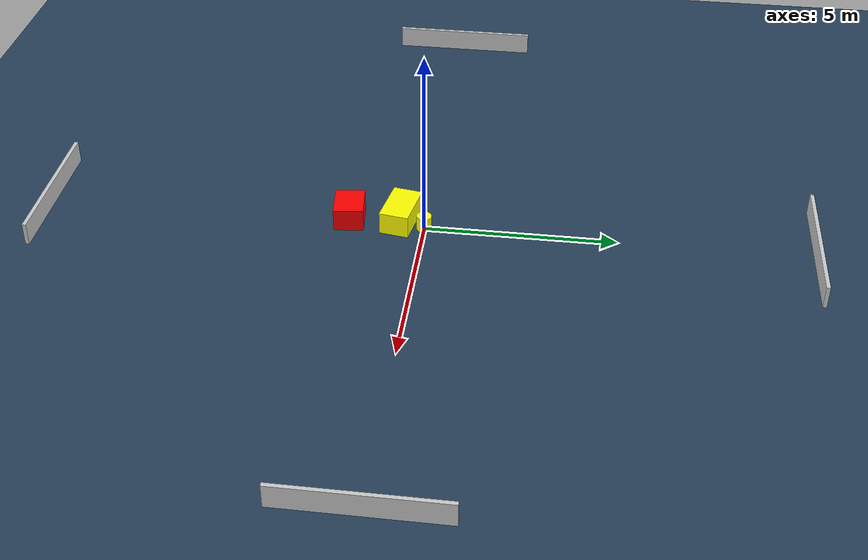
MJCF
<?xml version="1.0" ?>
<mujoco model="generated_environment">
  <option timestep="0.01" integrator="RK4" cone="elliptic"/>
  <default>
    <geom density="1"/>
  </default>
  <asset>
    <texture builtin="gradient" height="3072" name="skybox" rgb1="0.3 0.5 0.7" rgb2="0 0 0" type="skybox" width="512"/>
    <texture builtin="checker" height="300" name="groundplane" rgb1="0.2 0.3 0.4" rgb2="0.1 0.2 0.3" type="2d" width="300"/>
    <material name="groundplane" reflectance="0.2" texrepeat="5 5" texture="groundplane"/>
  </asset>
  <worldbody>
    <light dir="0 0 -1" directional="true" pos="0 0 1.5"/>
    <geom condim="3" friction="0.5 0.005 0.001" material="groundplane" name="floor" pos="0 0 0" size="0 0 0.05" type="plane"/>
    <body name="walls">
      <geom name="wall_1" condim="4" pos="-10.0 0.0 0.3" rgba="0.800000011920929 0.800000011920929 0.800000011920929 1.0" size="0.05 2.0 0.3" type="box"/>
      <geom name="wall_2" condim="4" pos="10.0 0.0 0.3" rgba="0.800000011920929 0.800000011920929 0.800000011920929 1.0" size="0.05 2.0 0.3" type="box"/>
      <geom name="wall_3" condim="4" pos="0.0 -10.0 0.3" rgba="0.800000011920929 0.800000011920929 0.800000011920929 1.0" size="2.0 0.05 0.3" type="box"/>
      <geom name="wall_4" condim="4" pos="0.0 10.0 0.3" rgba="0.800000011920929 0.800000011920929 0.800000011920929 1.0" size="2.0 0.05 0.3" type="box"/>
    </body>
    <body name="robot">
      <joint name="joint_x" type="slide" pos="0 0 0" axis="1 0 0"/>
      <joint name="joint_y" type="slide" pos="0 0 0" axis="0 1 0"/>
      <geom name="robot" type="cylinder" pos="0.0 0.0 0.2" size="0.2 0.2 0.0" mass="5.0" friction="1.0 0.005 0.0001" condim="4" rgba="1.0 1.0 0.0 1.0"/>
    </body>
    <body name="obstacle_1_movable">
      <geom name="obstacle_1_movable" condim="4" pos="-0.22815589543811607 -0.6401862517191065 0.3" euler="0 0 350.2755855642807" friction="0.0 0.005 0.001" rgba="1.0 1.0 0.0 1.0" size="0.6387333976028415 0.3853495509118042 0.3" type="box" mass="0.1"/>
      <joint type="free"/>
    </body>
    <body name="obstacle_2_static">
      <geom name="obstacle_2_static" condim="4" pos="-0.14963753929222431 -1.9889066144494998 0.3" euler="0 0 276.0659576391055" friction="0.0 0.005 0.001" rgba="1.0 0.0 0.0 1.0" size="0.38928312730342296 0.48575395303978575 0.3" type="box"/>
    </body>
  </worldbody>
  <actuator>
    <motor name="actuator_x" joint="joint_x" gear="1" ctrlrange="-1 1"/>
    <motor name="actuator_y" joint="joint_y" gear="1" ctrlrange="-1 1"/>
  </actuator>
</mujoco>
